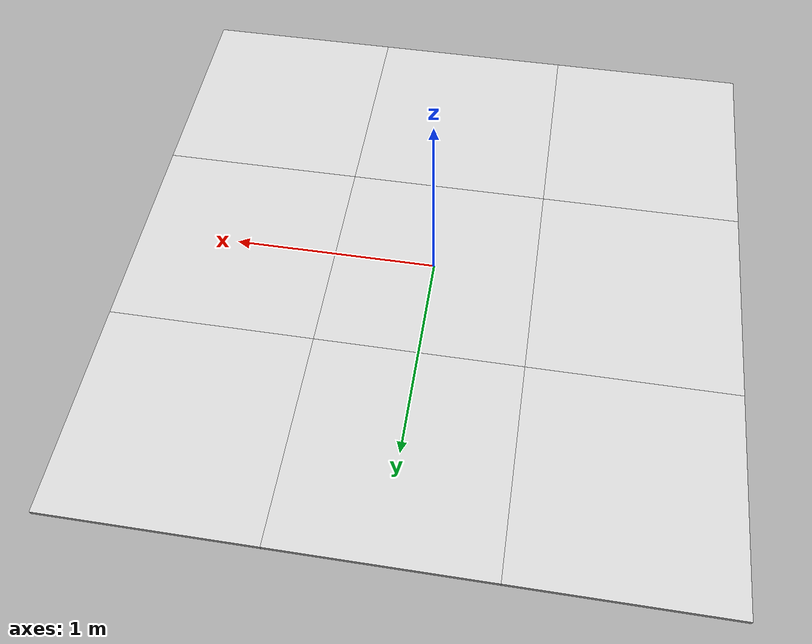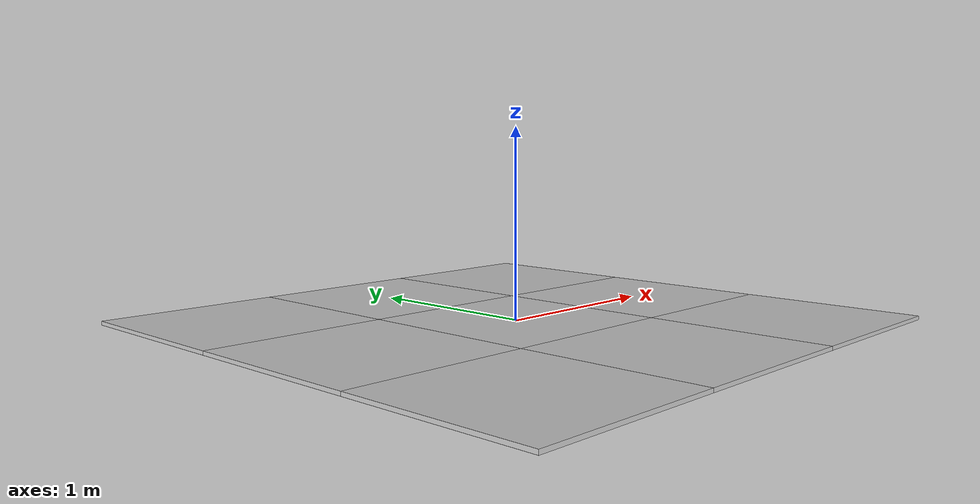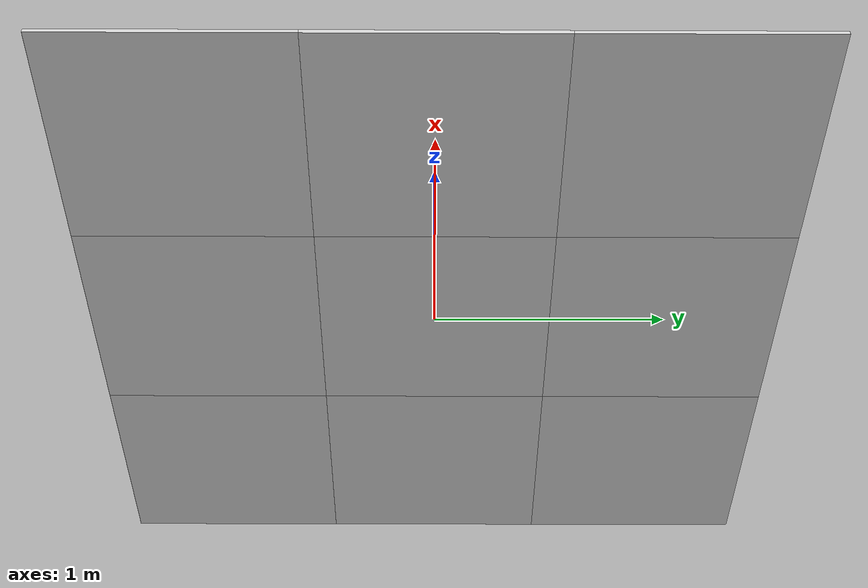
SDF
<?xml version="1.0" ?>
<sdf version="1.7">
<model name="steel_plate_3x3">
    <pose>0 0 0 0 0 0</pose>
    <static>1</static>

    <include>
        <name>steel plate (-1,  -1)</name>
        <uri>model://steel_plate_1x1</uri>
        <pose>-1 -1 0 0 0 0</pose>
    </include>
    <include>
        <name>steel plate (-1,  0)</name>
        <uri>model://steel_plate_1x1</uri>
        <pose>-1 0 0 0 0 0</pose>
    </include>
    <include>
        <name>steel plate (-1,  1)</name>
        <uri>model://steel_plate_1x1</uri>
        <pose>-1 1 0 0 0 0</pose>
    </include>

    <include>
        <name>steel plate (0,  -1)</name>
        <uri>model://steel_plate_1x1</uri>
        <pose>0 -1 0 0 0 0</pose>
    </include>
    <include>
        <name>steel plate (0,  0)</name>
        <uri>model://steel_plate_1x1</uri>
        <pose>0 0 0 0 0 0</pose>
    </include>
    <include>
        <name>steel plate (0,  1)</name>
        <uri>model://steel_plate_1x1</uri>
        <pose>0 1 0 0 0 0</pose>
    </include>

    <include>
        <name>steel plate (1,  -1)</name>
        <uri>model://steel_plate_1x1</uri>
        <pose>1 -1 0 0 0 0</pose>
    </include>
    <include>
        <name>steel plate (1,  0)</name>
        <uri>model://steel_plate_1x1</uri>
        <pose>1 0 0 0 0 0</pose>
    </include>
    <include>
        <name>steel plate (1,  1)</name>
        <uri>model://steel_plate_1x1</uri>
        <pose>1 1 0 0 0 0</pose>
    </include>

</model>
</sdf>

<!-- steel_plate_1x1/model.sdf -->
<sdf version="1.7">
<model name="steel_plate_1x1">
    <pose>0 0 0 0 0 0</pose>
    <static>true</static>
    <link name="link">
        <visual name="visual">
            <geometry>
                <box>
                    <size>1 1 0.02</size>
                </box>
            </geometry>
            <material>
                <render_order>5</render_order>
                <ambient>0.8 0.8 0.8 1</ambient>
                <diffuse>0.8 0.8 0.8 1</diffuse>
                <specular>0.8 0.8 0.8 1</specular>
                <pbr>
                    <metal>
                        <albedo_map>materials/textures/steelplate1_albedo.png</albedo_map>
                        <ambient_occlusion_map>materials/textures/steelplate1_ao.png</ambient_occlusion_map>
                        <metalness_map>materials/textures/steelplate1_metallic.png</metalness_map>
                        <normal_map>materials/textures/steelplate1_normal-ogl.png</normal_map>
                        <roughness_map>materials/textures/steelplate1_roughness.png</roughness_map>
                        <roughness>0.2</roughness>
                        <metalness>0.9</metalness>
                    </metal>
                </pbr>
            </material>
        </visual>
    </link>
</model>
</sdf>
